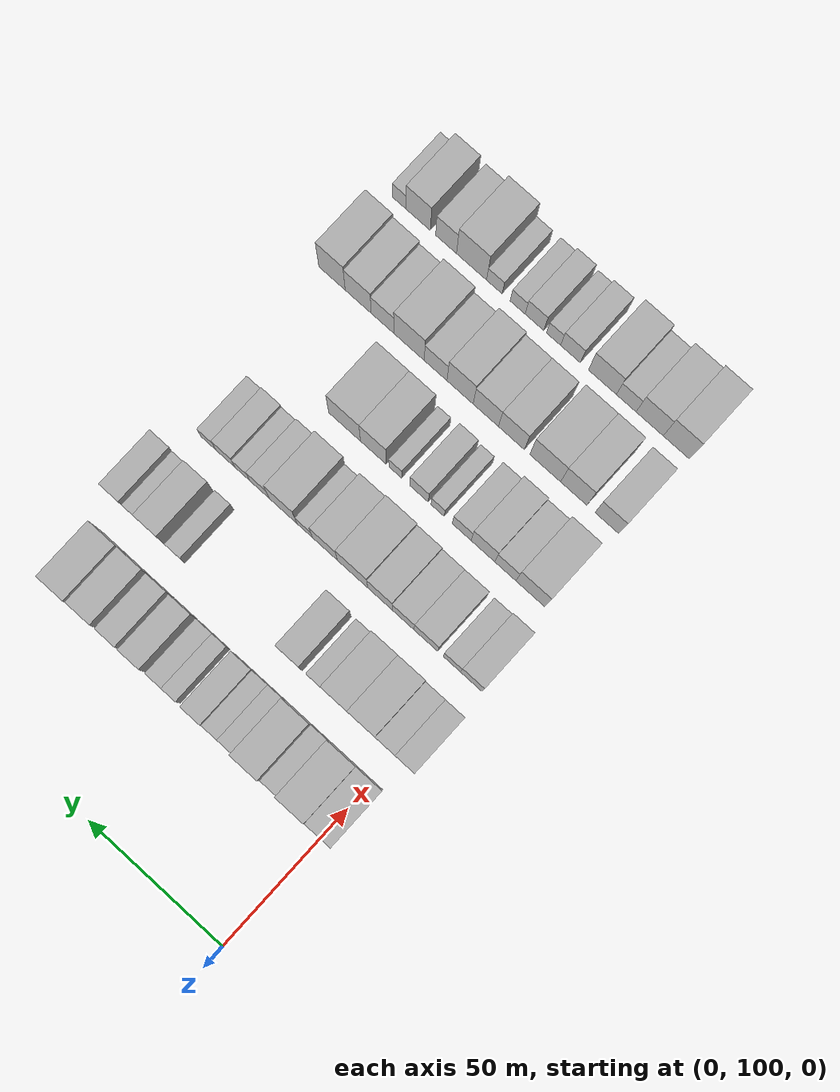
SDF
<sdf version="1.6">
 <world name="default">
  <model name="building_71">
   <static>1</static>
   <pose>50.0000 101.0539 0 0.000000 0.000000 0.000000</pose>
   <link name="link">
    <pose>0 0 10.50 0 0 0</pose>
    <collision name="collision"><geometry><box><size>20.0000 9.3595 21.0000</size></box></geometry></collision>
    <visual name="visual">
     <cast_shadows>0</cast_shadows>
     <geometry><box><size>20.0000 9.3595 21.0000</size></box></geometry>
     <material>
      <script>
       <uri>model://HANNAS_wall/materials/scripts</uri>
       <uri>model://HANNAS_wall/materials/textures</uri>
       <name>vrc/HANNAS_wall</name>
      </script>
     </material>
    </visual>
   </link>
  </model>
  <model name="building_72">
   <static>1</static>
   <pose>50.0000 110.8774 0 0.000000 0.000000 0.000000</pose>
   <link name="link">
    <pose>0 0 12.00 0 0 0</pose>
    <collision name="collision"><geometry><box><size>20.0000 10.2876 24.0000</size></box></geometry></collision>
    <visual name="visual">
     <cast_shadows>0</cast_shadows>
     <geometry><box><size>20.0000 10.2876 24.0000</size></box></geometry>
     <material>
      <script>
       <uri>model://HANNAS_wall/materials/scripts</uri>
       <uri>model://HANNAS_wall/materials/textures</uri>
       <name>vrc/HANNAS_wall</name>
      </script>
     </material>
    </visual>
   </link>
  </model>
  <model name="building_73">
   <static>1</static>
   <pose>50.0000 119.1125 0 0.000000 0.000000 0.000000</pose>
   <link name="link">
    <pose>0 0 7.50 0 0 0</pose>
    <collision name="collision"><geometry><box><size>20.0000 6.1827 15.0000</size></box></geometry></collision>
    <visual name="visual">
     <cast_shadows>0</cast_shadows>
     <geometry><box><size>20.0000 6.1827 15.0000</size></box></geometry>
     <material>
      <script>
       <uri>model://HANNAS_wall/materials/scripts</uri>
       <uri>model://HANNAS_wall/materials/textures</uri>
       <name>vrc/HANNAS_wall</name>
      </script>
     </material>
    </visual>
   </link>
  </model>
  <model name="building_74">
   <static>1</static>
   <pose>50.0000 127.1841 0 0.000000 0.000000 0.000000</pose>
   <link name="link">
    <pose>0 0 12.00 0 0 0</pose>
    <collision name="collision"><geometry><box><size>20.0000 9.9604 24.0000</size></box></geometry></collision>
    <visual name="visual">
     <cast_shadows>0</cast_shadows>
     <geometry><box><size>20.0000 9.9604 24.0000</size></box></geometry>
     <material>
      <script>
       <uri>model://HANNAS_wall/materials/scripts</uri>
       <uri>model://HANNAS_wall/materials/textures</uri>
       <name>vrc/HANNAS_wall</name>
      </script>
     </material>
    </visual>
   </link>
  </model>
  <model name="building_75">
   <static>1</static>
   <pose>50.0000 135.1140 0 0.000000 0.000000 0.000000</pose>
   <link name="link">
    <pose>0 0 6.00 0 0 0</pose>
    <collision name="collision"><geometry><box><size>20.0000 5.8995 12.0000</size></box></geometry></collision>
    <visual name="visual">
     <cast_shadows>0</cast_shadows>
     <geometry><box><size>20.0000 5.8995 12.0000</size></box></geometry>
     <material>
      <script>
       <uri>model://HANNAS_wall/materials/scripts</uri>
       <uri>model://HANNAS_wall/materials/textures</uri>
       <name>vrc/HANNAS_wall</name>
      </script>
     </material>
    </visual>
   </link>
  </model>
  <model name="building_76">
   <static>1</static>
   <pose>50.0000 140.9376 0 0.000000 0.000000 0.000000</pose>
   <link name="link">
    <pose>0 0 6.00 0 0 0</pose>
    <collision name="collision"><geometry><box><size>20.0000 5.7476 12.0000</size></box></geometry></collision>
    <visual name="visual">
     <cast_shadows>0</cast_shadows>
     <geometry><box><size>20.0000 5.7476 12.0000</size></box></geometry>
     <material>
      <script>
       <uri>model://HANNAS_wall/materials/scripts</uri>
       <uri>model://HANNAS_wall/materials/textures</uri>
       <name>vrc/HANNAS_wall</name>
      </script>
     </material>
    </visual>
   </link>
  </model>
  <model name="building_77">
   <static>1</static>
   <pose>50.0000 147.5024 0 0.000000 0.000000 0.000000</pose>
   <link name="link">
    <pose>0 0 7.50 0 0 0</pose>
    <collision name="collision"><geometry><box><size>20.0000 7.3821 15.0000</size></box></geometry></collision>
    <visual name="visual">
     <cast_shadows>0</cast_shadows>
     <geometry><box><size>20.0000 7.3821 15.0000</size></box></geometry>
     <material>
      <script>
       <uri>model://HANNAS_wall/materials/scripts</uri>
       <uri>model://HANNAS_wall/materials/textures</uri>
       <name>vrc/HANNAS_wall</name>
      </script>
     </material>
    </visual>
   </link>
  </model>
  <model name="building_78">
   <static>1</static>
   <pose>50.0000 155.8567 0 0.000000 0.000000 0.000000</pose>
   <link name="link">
    <pose>0 0 6.00 0 0 0</pose>
    <collision name="collision"><geometry><box><size>20.0000 5.3264 12.0000</size></box></geometry></collision>
    <visual name="visual">
     <cast_shadows>0</cast_shadows>
     <geometry><box><size>20.0000 5.3264 12.0000</size></box></geometry>
     <material>
      <script>
       <uri>model://HANNAS_wall/materials/scripts</uri>
       <uri>model://HANNAS_wall/materials/textures</uri>
       <name>vrc/HANNAS_wall</name>
      </script>
     </material>
    </visual>
   </link>
  </model>
  <model name="building_79">
   <static>1</static>
   <pose>50.0000 161.5130 0 0.000000 0.000000 0.000000</pose>
   <link name="link">
    <pose>0 0 6.00 0 0 0</pose>
    <collision name="collision"><geometry><box><size>20.0000 5.9861 12.0000</size></box></geometry></collision>
    <visual name="visual">
     <cast_shadows>0</cast_shadows>
     <geometry><box><size>20.0000 5.9861 12.0000</size></box></geometry>
     <material>
      <script>
       <uri>model://HANNAS_wall/materials/scripts</uri>
       <uri>model://HANNAS_wall/materials/textures</uri>
       <name>vrc/HANNAS_wall</name>
      </script>
     </material>
    </visual>
   </link>
  </model>
  <model name="building_80">
   <static>1</static>
   <pose>50.0000 169.4556 0 0.000000 0.000000 0.000000</pose>
   <link name="link">
    <pose>0 0 9.00 0 0 0</pose>
    <collision name="collision"><geometry><box><size>20.0000 7.8993 18.0000</size></box></geometry></collision>
    <visual name="visual">
     <cast_shadows>0</cast_shadows>
     <geometry><box><size>20.0000 7.8993 18.0000</size></box></geometry>
     <material>
      <script>
       <uri>model://HANNAS_wall/materials/scripts</uri>
       <uri>model://HANNAS_wall/materials/textures</uri>
       <name>vrc/HANNAS_wall</name>
      </script>
     </material>
    </visual>
   </link>
  </model>
  <model name="building_81">
   <static>1</static>
   <pose>50.0000 178.1070 0 0.000000 0.000000 0.000000</pose>
   <link name="link">
    <pose>0 0 9.00 0 0 0</pose>
    <collision name="collision"><geometry><box><size>20.0000 7.4035 18.0000</size></box></geometry></collision>
    <visual name="visual">
     <cast_shadows>0</cast_shadows>
     <geometry><box><size>20.0000 7.4035 18.0000</size></box></geometry>
     <material>
      <script>
       <uri>model://HANNAS_wall/materials/scripts</uri>
       <uri>model://HANNAS_wall/materials/textures</uri>
       <name>vrc/HANNAS_wall</name>
      </script>
     </material>
    </visual>
   </link>
  </model>
  <model name="building_82">
   <static>1</static>
   <pose>50.0000 187.3291 0 0.000000 0.000000 0.000000</pose>
   <link name="link">
    <pose>0 0 10.50 0 0 0</pose>
    <collision name="collision"><geometry><box><size>20.0000 9.0406 21.0000</size></box></geometry></collision>
    <visual name="visual">
     <cast_shadows>0</cast_shadows>
     <geometry><box><size>20.0000 9.0406 21.0000</size></box></geometry>
     <material>
      <script>
       <uri>model://HANNAS_wall/materials/scripts</uri>
       <uri>model://HANNAS_wall/materials/textures</uri>
       <name>vrc/HANNAS_wall</name>
      </script>
     </material>
    </visual>
   </link>
  </model>
  <model name="building_83">
   <static>1</static>
   <pose>50.0000 196.7568 0 0.000000 0.000000 0.000000</pose>
   <link name="link">
    <pose>0 0 12.00 0 0 0</pose>
    <collision name="collision"><geometry><box><size>20.0000 9.8148 24.0000</size></box></geometry></collision>
    <visual name="visual">
     <cast_shadows>0</cast_shadows>
     <geometry><box><size>20.0000 9.8148 24.0000</size></box></geometry>
     <material>
      <script>
       <uri>model://HANNAS_wall/materials/scripts</uri>
       <uri>model://HANNAS_wall/materials/textures</uri>
       <name>vrc/HANNAS_wall</name>
      </script>
     </material>
    </visual>
   </link>
  </model>
  <model name="building_188">
   <static>1</static>
   <pose>79.0000 96.5743 0 0.000000 0.000000 0.000000</pose>
   <link name="link">
    <pose>0 0 7.50 0 0 0</pose>
    <collision name="collision"><geometry><box><size>20.0000 7.0756 15.0000</size></box></geometry></collision>
    <visual name="visual">
     <cast_shadows>0</cast_shadows>
     <geometry><box><size>20.0000 7.0756 15.0000</size></box></geometry>
     <material>
      <script>
       <uri>model://HANNAS_wall/materials/scripts</uri>
       <uri>model://HANNAS_wall/materials/textures</uri>
       <name>vrc/HANNAS_wall</name>
      </script>
     </material>
    </visual>
   </link>
  </model>
  <model name="building_189">
   <static>1</static>
   <pose>79.0000 103.6731 0 0.000000 0.000000 0.000000</pose>
   <link name="link">
    <pose>0 0 7.50 0 0 0</pose>
    <collision name="collision"><geometry><box><size>20.0000 7.1220 15.0000</size></box></geometry></collision>
    <visual name="visual">
     <cast_shadows>0</cast_shadows>
     <geometry><box><size>20.0000 7.1220 15.0000</size></box></geometry>
     <material>
      <script>
       <uri>model://HANNAS_wall/materials/scripts</uri>
       <uri>model://HANNAS_wall/materials/textures</uri>
       <name>vrc/HANNAS_wall</name>
      </script>
     </material>
    </visual>
   </link>
  </model>
  <model name="building_190">
   <static>1</static>
   <pose>79.0000 112.2514 0 0.000000 0.000000 0.000000</pose>
   <link name="link">
    <pose>0 0 10.50 0 0 0</pose>
    <collision name="collision"><geometry><box><size>20.0000 10.0345 21.0000</size></box></geometry></collision>
    <visual name="visual">
     <cast_shadows>0</cast_shadows>
     <geometry><box><size>20.0000 10.0345 21.0000</size></box></geometry>
     <material>
      <script>
       <uri>model://HANNAS_wall/materials/scripts</uri>
       <uri>model://HANNAS_wall/materials/textures</uri>
       <name>vrc/HANNAS_wall</name>
      </script>
     </material>
    </visual>
   </link>
  </model>
  <model name="building_191">
   <static>1</static>
   <pose>79.0000 122.0400 0 0.000000 0.000000 0.000000</pose>
   <link name="link">
    <pose>0 0 10.50 0 0 0</pose>
    <collision name="collision"><geometry><box><size>20.0000 9.5428 21.0000</size></box></geometry></collision>
    <visual name="visual">
     <cast_shadows>0</cast_shadows>
     <geometry><box><size>20.0000 9.5428 21.0000</size></box></geometry>
     <material>
      <script>
       <uri>model://HANNAS_wall/materials/scripts</uri>
       <uri>model://HANNAS_wall/materials/textures</uri>
       <name>vrc/HANNAS_wall</name>
      </script>
     </material>
    </visual>
   </link>
  </model>
  <model name="building_192">
   <static>1</static>
   <pose>79.0000 129.6614 0 0.000000 0.000000 0.000000</pose>
   <link name="link">
    <pose>0 0 6.00 0 0 0</pose>
    <collision name="collision"><geometry><box><size>20.0000 5.7000 12.0000</size></box></geometry></collision>
    <visual name="visual">
     <cast_shadows>0</cast_shadows>
     <geometry><box><size>20.0000 5.7000 12.0000</size></box></geometry>
     <material>
      <script>
       <uri>model://HANNAS_wall/materials/scripts</uri>
       <uri>model://HANNAS_wall/materials/textures</uri>
       <name>vrc/HANNAS_wall</name>
      </script>
     </material>
    </visual>
   </link>
  </model>
  <model name="building_193">
   <static>1</static>
   <pose>79.0000 138.7228 0 0.000000 0.000000 0.000000</pose>
   <link name="link">
    <pose>0 0 10.50 0 0 0</pose>
    <collision name="collision"><geometry><box><size>20.0000 8.4227 21.0000</size></box></geometry></collision>
    <visual name="visual">
     <cast_shadows>0</cast_shadows>
     <geometry><box><size>20.0000 8.4227 21.0000</size></box></geometry>
     <material>
      <script>
       <uri>model://HANNAS_wall/materials/scripts</uri>
       <uri>model://HANNAS_wall/materials/textures</uri>
       <name>vrc/HANNAS_wall</name>
      </script>
     </material>
    </visual>
   </link>
  </model>
  <model name="building_194">
   <static>1</static>
   <pose>79.0000 181.6179 0 0.000000 0.000000 0.000000</pose>
   <link name="link">
    <pose>0 0 6.00 0 0 0</pose>
    <collision name="collision"><geometry><box><size>20.0000 5.7892 12.0000</size></box></geometry></collision>
    <visual name="visual">
     <cast_shadows>0</cast_shadows>
     <geometry><box><size>20.0000 5.7892 12.0000</size></box></geometry>
     <material>
      <script>
       <uri>model://HANNAS_wall/materials/scripts</uri>
       <uri>model://HANNAS_wall/materials/textures</uri>
       <name>vrc/HANNAS_wall</name>
      </script>
     </material>
    </visual>
   </link>
  </model>
  <model name="building_195">
   <static>1</static>
   <pose>79.0000 190.8916 0 0.000000 0.000000 0.000000</pose>
   <link name="link">
    <pose>0 0 9.00 0 0 0</pose>
    <collision name="collision"><geometry><box><size>20.0000 8.7582 18.0000</size></box></geometry></collision>
    <visual name="visual">
     <cast_shadows>0</cast_shadows>
     <geometry><box><size>20.0000 8.7582 18.0000</size></box></geometry>
     <material>
      <script>
       <uri>model://HANNAS_wall/materials/scripts</uri>
       <uri>model://HANNAS_wall/materials/textures</uri>
       <name>vrc/HANNAS_wall</name>
      </script>
     </material>
    </visual>
   </link>
  </model>
  <model name="building_196">
   <static>1</static>
   <pose>79.0000 197.8643 0 0.000000 0.000000 0.000000</pose>
   <link name="link">
    <pose>0 0 6.00 0 0 0</pose>
    <collision name="collision"><geometry><box><size>20.0000 5.1871 12.0000</size></box></geometry></collision>
    <visual name="visual">
     <cast_shadows>0</cast_shadows>
     <geometry><box><size>20.0000 5.1871 12.0000</size></box></geometry>
     <material>
      <script>
       <uri>model://HANNAS_wall/materials/scripts</uri>
       <uri>model://HANNAS_wall/materials/textures</uri>
       <name>vrc/HANNAS_wall</name>
      </script>
     </material>
    </visual>
   </link>
  </model>
  <model name="building_197">
   <static>1</static>
   <pose>79.0000 204.0607 0 0.000000 0.000000 0.000000</pose>
   <link name="link">
    <pose>0 0 9.00 0 0 0</pose>
    <collision name="collision"><geometry><box><size>20.0000 7.2057 18.0000</size></box></geometry></collision>
    <visual name="visual">
     <cast_shadows>0</cast_shadows>
     <geometry><box><size>20.0000 7.2057 18.0000</size></box></geometry>
     <material>
      <script>
       <uri>model://HANNAS_wall/materials/scripts</uri>
       <uri>model://HANNAS_wall/materials/textures</uri>
       <name>vrc/HANNAS_wall</name>
      </script>
     </material>
    </visual>
   </link>
  </model>
  <model name="building_302">
   <static>1</static>
   <pose>108.0000 98.2556 0 0.000000 0.000000 0.000000</pose>
   <link name="link">
    <pose>0 0 9.00 0 0 0</pose>
    <collision name="collision"><geometry><box><size>20.0000 7.8752 18.0000</size></box></geometry></collision>
    <visual name="visual">
     <cast_shadows>0</cast_shadows>
     <geometry><box><size>20.0000 7.8752 18.0000</size></box></geometry>
     <material>
      <script>
       <uri>model://HANNAS_wall/materials/scripts</uri>
       <uri>model://HANNAS_wall/materials/textures</uri>
       <name>vrc/HANNAS_wall</name>
      </script>
     </material>
    </visual>
   </link>
  </model>
  <model name="building_303">
   <static>1</static>
   <pose>108.0000 105.4033 0 0.000000 0.000000 0.000000</pose>
   <link name="link">
    <pose>0 0 7.50 0 0 0</pose>
    <collision name="collision"><geometry><box><size>20.0000 6.4203 15.0000</size></box></geometry></collision>
    <visual name="visual">
     <cast_shadows>0</cast_shadows>
     <geometry><box><size>20.0000 6.4203 15.0000</size></box></geometry>
     <material>
      <script>
       <uri>model://HANNAS_wall/materials/scripts</uri>
       <uri>model://HANNAS_wall/materials/textures</uri>
       <name>vrc/HANNAS_wall</name>
      </script>
     </material>
    </visual>
   </link>
  </model>
  <model name="building_304">
   <static>1</static>
   <pose>108.0000 115.0319 0 0.000000 0.000000 0.000000</pose>
   <link name="link">
    <pose>0 0 9.00 0 0 0</pose>
    <collision name="collision"><geometry><box><size>20.0000 8.8369 18.0000</size></box></geometry></collision>
    <visual name="visual">
     <cast_shadows>0</cast_shadows>
     <geometry><box><size>20.0000 8.8369 18.0000</size></box></geometry>
     <material>
      <script>
       <uri>model://HANNAS_wall/materials/scripts</uri>
       <uri>model://HANNAS_wall/materials/textures</uri>
       <name>vrc/HANNAS_wall</name>
      </script>
     </material>
    </visual>
   </link>
  </model>
  <model name="building_305">
   <static>1</static>
   <pose>108.0000 123.5034 0 0.000000 0.000000 0.000000</pose>
   <link name="link">
    <pose>0 0 9.00 0 0 0</pose>
    <collision name="collision"><geometry><box><size>20.0000 8.1060 18.0000</size></box></geometry></collision>
    <visual name="visual">
     <cast_shadows>0</cast_shadows>
     <geometry><box><size>20.0000 8.1060 18.0000</size></box></geometry>
     <material>
      <script>
       <uri>model://HANNAS_wall/materials/scripts</uri>
       <uri>model://HANNAS_wall/materials/textures</uri>
       <name>vrc/HANNAS_wall</name>
      </script>
     </material>
    </visual>
   </link>
  </model>
  <model name="building_306">
   <static>1</static>
   <pose>108.0000 132.1060 0 0.000000 0.000000 0.000000</pose>
   <link name="link">
    <pose>0 0 10.50 0 0 0</pose>
    <collision name="collision"><geometry><box><size>20.0000 9.0993 21.0000</size></box></geometry></collision>
    <visual name="visual">
     <cast_shadows>0</cast_shadows>
     <geometry><box><size>20.0000 9.0993 21.0000</size></box></geometry>
     <material>
      <script>
       <uri>model://HANNAS_wall/materials/scripts</uri>
       <uri>model://HANNAS_wall/materials/textures</uri>
       <name>vrc/HANNAS_wall</name>
      </script>
     </material>
    </visual>
   </link>
  </model>
  <model name="building_307">
   <static>1</static>
   <pose>108.0000 142.3118 0 0.000000 0.000000 0.000000</pose>
   <link name="link">
    <pose>0 0 12.00 0 0 0</pose>
    <collision name="collision"><geometry><box><size>20.0000 11.3123 24.0000</size></box></geometry></collision>
    <visual name="visual">
     <cast_shadows>0</cast_shadows>
     <geometry><box><size>20.0000 11.3123 24.0000</size></box></geometry>
     <material>
      <script>
       <uri>model://HANNAS_wall/materials/scripts</uri>
       <uri>model://HANNAS_wall/materials/textures</uri>
       <name>vrc/HANNAS_wall</name>
      </script>
     </material>
    </visual>
   </link>
  </model>
  <model name="building_308">
   <static>1</static>
   <pose>108.0000 152.6984 0 0.000000 0.000000 0.000000</pose>
   <link name="link">
    <pose>0 0 10.50 0 0 0</pose>
    <collision name="collision"><geometry><box><size>20.0000 9.4609 21.0000</size></box></geometry></collision>
    <visual name="visual">
     <cast_shadows>0</cast_shadows>
     <geometry><box><size>20.0000 9.4609 21.0000</size></box></geometry>
     <material>
      <script>
       <uri>model://HANNAS_wall/materials/scripts</uri>
       <uri>model://HANNAS_wall/materials/textures</uri>
       <name>vrc/HANNAS_wall</name>
      </script>
     </material>
    </visual>
   </link>
  </model>
  <model name="building_309">
   <static>1</static>
   <pose>108.0000 160.3365 0 0.000000 0.000000 0.000000</pose>
   <link name="link">
    <pose>0 0 6.00 0 0 0</pose>
    <collision name="collision"><geometry><box><size>20.0000 5.8154 12.0000</size></box></geometry></collision>
    <visual name="visual">
     <cast_shadows>0</cast_shadows>
     <geometry><box><size>20.0000 5.8154 12.0000</size></box></geometry>
     <material>
      <script>
       <uri>model://HANNAS_wall/materials/scripts</uri>
       <uri>model://HANNAS_wall/materials/textures</uri>
       <name>vrc/HANNAS_wall</name>
      </script>
     </material>
    </visual>
   </link>
  </model>
  <model name="building_310">
   <static>1</static>
   <pose>108.0000 168.4570 0 0.000000 0.000000 0.000000</pose>
   <link name="link">
    <pose>0 0 12.00 0 0 0</pose>
    <collision name="collision"><geometry><box><size>20.0000 10.4254 24.0000</size></box></geometry></collision>
    <visual name="visual">
     <cast_shadows>0</cast_shadows>
     <geometry><box><size>20.0000 10.4254 24.0000</size></box></geometry>
     <material>
      <script>
       <uri>model://HANNAS_wall/materials/scripts</uri>
       <uri>model://HANNAS_wall/materials/textures</uri>
       <name>vrc/HANNAS_wall</name>
      </script>
     </material>
    </visual>
   </link>
  </model>
  <model name="building_311">
   <static>1</static>
   <pose>108.0000 177.3635 0 0.000000 0.000000 0.000000</pose>
   <link name="link">
    <pose>0 0 7.50 0 0 0</pose>
    <collision name="collision"><geometry><box><size>20.0000 7.3877 15.0000</size></box></geometry></collision>
    <visual name="visual">
     <cast_shadows>0</cast_shadows>
     <geometry><box><size>20.0000 7.3877 15.0000</size></box></geometry>
     <material>
      <script>
       <uri>model://HANNAS_wall/materials/scripts</uri>
       <uri>model://HANNAS_wall/materials/textures</uri>
       <name>vrc/HANNAS_wall</name>
      </script>
     </material>
    </visual>
   </link>
  </model>
  <model name="building_312">
   <static>1</static>
   <pose>108.0000 183.8747 0 0.000000 0.000000 0.000000</pose>
   <link name="link">
    <pose>0 0 6.00 0 0 0</pose>
    <collision name="collision"><geometry><box><size>20.0000 5.6348 12.0000</size></box></geometry></collision>
    <visual name="visual">
     <cast_shadows>0</cast_shadows>
     <geometry><box><size>20.0000 5.6348 12.0000</size></box></geometry>
     <material>
      <script>
       <uri>model://HANNAS_wall/materials/scripts</uri>
       <uri>model://HANNAS_wall/materials/textures</uri>
       <name>vrc/HANNAS_wall</name>
      </script>
     </material>
    </visual>
   </link>
  </model>
  <model name="building_313">
   <static>1</static>
   <pose>108.0000 190.2907 0 0.000000 0.000000 0.000000</pose>
   <link name="link">
    <pose>0 0 7.50 0 0 0</pose>
    <collision name="collision"><geometry><box><size>20.0000 7.1971 15.0000</size></box></geometry></collision>
    <visual name="visual">
     <cast_shadows>0</cast_shadows>
     <geometry><box><size>20.0000 7.1971 15.0000</size></box></geometry>
     <material>
      <script>
       <uri>model://HANNAS_wall/materials/scripts</uri>
       <uri>model://HANNAS_wall/materials/textures</uri>
       <name>vrc/HANNAS_wall</name>
      </script>
     </material>
    </visual>
   </link>
  </model>
  <model name="building_314">
   <static>1</static>
   <pose>108.0000 196.7544 0 0.000000 0.000000 0.000000</pose>
   <link name="link">
    <pose>0 0 6.00 0 0 0</pose>
    <collision name="collision"><geometry><box><size>20.0000 5.7305 12.0000</size></box></geometry></collision>
    <visual name="visual">
     <cast_shadows>0</cast_shadows>
     <geometry><box><size>20.0000 5.7305 12.0000</size></box></geometry>
     <material>
      <script>
       <uri>model://HANNAS_wall/materials/scripts</uri>
       <uri>model://HANNAS_wall/materials/textures</uri>
       <name>vrc/HANNAS_wall</name>
      </script>
     </material>
    </visual>
   </link>
  </model>
  <model name="building_408">
   <static>1</static>
   <pose>137.0000 102.3464 0 0.000000 0.000000 0.000000</pose>
   <link name="link">
    <pose>0 0 12.00 0 0 0</pose>
    <collision name="collision"><geometry><box><size>20.0000 10.6785 24.0000</size></box></geometry></collision>
    <visual name="visual">
     <cast_shadows>0</cast_shadows>
     <geometry><box><size>20.0000 10.6785 24.0000</size></box></geometry>
     <material>
      <script>
       <uri>model://HANNAS_wall/materials/scripts</uri>
       <uri>model://HANNAS_wall/materials/textures</uri>
       <name>vrc/HANNAS_wall</name>
      </script>
     </material>
    </visual>
   </link>
  </model>
  <model name="building_409">
   <static>1</static>
   <pose>137.0000 111.6262 0 0.000000 0.000000 0.000000</pose>
   <link name="link">
    <pose>0 0 9.00 0 0 0</pose>
    <collision name="collision"><geometry><box><size>20.0000 7.8810 18.0000</size></box></geometry></collision>
    <visual name="visual">
     <cast_shadows>0</cast_shadows>
     <geometry><box><size>20.0000 7.8810 18.0000</size></box></geometry>
     <material>
      <script>
       <uri>model://HANNAS_wall/materials/scripts</uri>
       <uri>model://HANNAS_wall/materials/textures</uri>
       <name>vrc/HANNAS_wall</name>
      </script>
     </material>
    </visual>
   </link>
  </model>
  <model name="building_410">
   <static>1</static>
   <pose>137.0000 119.9824 0 0.000000 0.000000 0.000000</pose>
   <link name="link">
    <pose>0 0 10.50 0 0 0</pose>
    <collision name="collision"><geometry><box><size>20.0000 8.8315 21.0000</size></box></geometry></collision>
    <visual name="visual">
     <cast_shadows>0</cast_shadows>
     <geometry><box><size>20.0000 8.8315 21.0000</size></box></geometry>
     <material>
      <script>
       <uri>model://HANNAS_wall/materials/scripts</uri>
       <uri>model://HANNAS_wall/materials/textures</uri>
       <name>vrc/HANNAS_wall</name>
      </script>
     </material>
    </visual>
   </link>
  </model>
  <model name="building_411">
   <static>1</static>
   <pose>137.0000 127.9143 0 0.000000 0.000000 0.000000</pose>
   <link name="link">
    <pose>0 0 7.50 0 0 0</pose>
    <collision name="collision"><geometry><box><size>20.0000 7.0322 15.0000</size></box></geometry></collision>
    <visual name="visual">
     <cast_shadows>0</cast_shadows>
     <geometry><box><size>20.0000 7.0322 15.0000</size></box></geometry>
     <material>
      <script>
       <uri>model://HANNAS_wall/materials/scripts</uri>
       <uri>model://HANNAS_wall/materials/textures</uri>
       <name>vrc/HANNAS_wall</name>
      </script>
     </material>
    </visual>
   </link>
  </model>
  <model name="building_412">
   <static>1</static>
   <pose>137.0000 136.9171 0 0.000000 0.000000 0.000000</pose>
   <link name="link">
    <pose>0 0 6.00 0 0 0</pose>
    <collision name="collision"><geometry><box><size>20.0000 4.9735 12.0000</size></box></geometry></collision>
    <visual name="visual">
     <cast_shadows>0</cast_shadows>
     <geometry><box><size>20.0000 4.9735 12.0000</size></box></geometry>
     <material>
      <script>
       <uri>model://HANNAS_wall/materials/scripts</uri>
       <uri>model://HANNAS_wall/materials/textures</uri>
       <name>vrc/HANNAS_wall</name>
      </script>
     </material>
    </visual>
   </link>
  </model>
  <model name="building_413">
   <static>1</static>
   <pose>137.0000 143.8918 0 0.000000 0.000000 0.000000</pose>
   <link name="link">
    <pose>0 0 7.50 0 0 0</pose>
    <collision name="collision"><geometry><box><size>20.0000 6.9758 15.0000</size></box></geometry></collision>
    <visual name="visual">
     <cast_shadows>0</cast_shadows>
     <geometry><box><size>20.0000 6.9758 15.0000</size></box></geometry>
     <material>
      <script>
       <uri>model://HANNAS_wall/materials/scripts</uri>
       <uri>model://HANNAS_wall/materials/textures</uri>
       <name>vrc/HANNAS_wall</name>
      </script>
     </material>
    </visual>
   </link>
  </model>
  <model name="building_414">
   <static>1</static>
   <pose>137.0000 152.7849 0 0.000000 0.000000 0.000000</pose>
   <link name="link">
    <pose>0 0 6.00 0 0 0</pose>
    <collision name="collision"><geometry><box><size>20.0000 4.8103 12.0000</size></box></geometry></collision>
    <visual name="visual">
     <cast_shadows>0</cast_shadows>
     <geometry><box><size>20.0000 4.8103 12.0000</size></box></geometry>
     <material>
      <script>
       <uri>model://HANNAS_wall/materials/scripts</uri>
       <uri>model://HANNAS_wall/materials/textures</uri>
       <name>vrc/HANNAS_wall</name>
      </script>
     </material>
    </visual>
   </link>
  </model>
  <model name="building_415">
   <static>1</static>
   <pose>137.0000 161.0435 0 0.000000 0.000000 0.000000</pose>
   <link name="link">
    <pose>0 0 12.00 0 0 0</pose>
    <collision name="collision"><geometry><box><size>20.0000 9.7071 24.0000</size></box></geometry></collision>
    <visual name="visual">
     <cast_shadows>0</cast_shadows>
     <geometry><box><size>20.0000 9.7071 24.0000</size></box></geometry>
     <material>
      <script>
       <uri>model://HANNAS_wall/materials/scripts</uri>
       <uri>model://HANNAS_wall/materials/textures</uri>
       <name>vrc/HANNAS_wall</name>
      </script>
     </material>
    </visual>
   </link>
  </model>
  <model name="building_416">
   <static>1</static>
   <pose>137.0000 171.8922 0 0.000000 0.000000 0.000000</pose>
   <link name="link">
    <pose>0 0 12.00 0 0 0</pose>
    <collision name="collision"><geometry><box><size>20.0000 11.9903 24.0000</size></box></geometry></collision>
    <visual name="visual">
     <cast_shadows>0</cast_shadows>
     <geometry><box><size>20.0000 11.9903 24.0000</size></box></geometry>
     <material>
      <script>
       <uri>model://HANNAS_wall/materials/scripts</uri>
       <uri>model://HANNAS_wall/materials/textures</uri>
       <name>vrc/HANNAS_wall</name>
      </script>
     </material>
    </visual>
   </link>
  </model>
  <model name="building_522">
   <static>1</static>
   <pose>166.0000 99.7844 0 0.000000 0.000000 0.000000</pose>
   <link name="link">
    <pose>0 0 10.50 0 0 0</pose>
    <collision name="collision"><geometry><box><size>20.0000 8.7905 21.0000</size></box></geometry></collision>
    <visual name="visual">
     <cast_shadows>0</cast_shadows>
     <geometry><box><size>20.0000 8.7905 21.0000</size></box></geometry>
     <material>
      <script>
       <uri>model://HANNAS_wall/materials/scripts</uri>
       <uri>model://HANNAS_wall/materials/textures</uri>
       <name>vrc/HANNAS_wall</name>
      </script>
     </material>
    </visual>
   </link>
  </model>
  <model name="building_523">
   <static>1</static>
   <pose>166.0000 112.0609 0 0.000000 0.000000 0.000000</pose>
   <link name="link">
    <pose>0 0 12.00 0 0 0</pose>
    <collision name="collision"><geometry><box><size>20.0000 9.7625 24.0000</size></box></geometry></collision>
    <visual name="visual">
     <cast_shadows>0</cast_shadows>
     <geometry><box><size>20.0000 9.7625 24.0000</size></box></geometry>
     <material>
      <script>
       <uri>model://HANNAS_wall/materials/scripts</uri>
       <uri>model://HANNAS_wall/materials/textures</uri>
       <name>vrc/HANNAS_wall</name>
      </script>
     </material>
    </visual>
   </link>
  </model>
  <model name="building_524">
   <static>1</static>
   <pose>166.0000 122.7103 0 0.000000 0.000000 0.000000</pose>
   <link name="link">
    <pose>0 0 12.00 0 0 0</pose>
    <collision name="collision"><geometry><box><size>20.0000 11.5364 24.0000</size></box></geometry></collision>
    <visual name="visual">
     <cast_shadows>0</cast_shadows>
     <geometry><box><size>20.0000 11.5364 24.0000</size></box></geometry>
     <material>
      <script>
       <uri>model://HANNAS_wall/materials/scripts</uri>
       <uri>model://HANNAS_wall/materials/textures</uri>
       <name>vrc/HANNAS_wall</name>
      </script>
     </material>
    </visual>
   </link>
  </model>
  <model name="building_525">
   <static>1</static>
   <pose>166.0000 135.3491 0 0.000000 0.000000 0.000000</pose>
   <link name="link">
    <pose>0 0 10.50 0 0 0</pose>
    <collision name="collision"><geometry><box><size>20.0000 9.7411 21.0000</size></box></geometry></collision>
    <visual name="visual">
     <cast_shadows>0</cast_shadows>
     <geometry><box><size>20.0000 9.7411 21.0000</size></box></geometry>
     <material>
      <script>
       <uri>model://HANNAS_wall/materials/scripts</uri>
       <uri>model://HANNAS_wall/materials/textures</uri>
       <name>vrc/HANNAS_wall</name>
      </script>
     </material>
    </visual>
   </link>
  </model>
  <model name="building_526">
   <static>1</static>
   <pose>166.0000 144.9802 0 0.000000 0.000000 0.000000</pose>
   <link name="link">
    <pose>0 0 10.50 0 0 0</pose>
    <collision name="collision"><geometry><box><size>20.0000 9.5213 21.0000</size></box></geometry></collision>
    <visual name="visual">
     <cast_shadows>0</cast_shadows>
     <geometry><box><size>20.0000 9.5213 21.0000</size></box></geometry>
     <material>
      <script>
       <uri>model://HANNAS_wall/materials/scripts</uri>
       <uri>model://HANNAS_wall/materials/textures</uri>
       <name>vrc/HANNAS_wall</name>
      </script>
     </material>
    </visual>
   </link>
  </model>
  <model name="building_527">
   <static>1</static>
   <pose>166.0000 154.6843 0 0.000000 0.000000 0.000000</pose>
   <link name="link">
    <pose>0 0 12.00 0 0 0</pose>
    <collision name="collision"><geometry><box><size>20.0000 9.8869 24.0000</size></box></geometry></collision>
    <visual name="visual">
     <cast_shadows>0</cast_shadows>
     <geometry><box><size>20.0000 9.8869 24.0000</size></box></geometry>
     <material>
      <script>
       <uri>model://HANNAS_wall/materials/scripts</uri>
       <uri>model://HANNAS_wall/materials/textures</uri>
       <name>vrc/HANNAS_wall</name>
      </script>
     </material>
    </visual>
   </link>
  </model>
  <model name="building_528">
   <static>1</static>
   <pose>166.0000 163.9347 0 0.000000 0.000000 0.000000</pose>
   <link name="link">
    <pose>0 0 9.00 0 0 0</pose>
    <collision name="collision"><geometry><box><size>20.0000 8.6139 18.0000</size></box></geometry></collision>
    <visual name="visual">
     <cast_shadows>0</cast_shadows>
     <geometry><box><size>20.0000 8.6139 18.0000</size></box></geometry>
     <material>
      <script>
       <uri>model://HANNAS_wall/materials/scripts</uri>
       <uri>model://HANNAS_wall/materials/textures</uri>
       <name>vrc/HANNAS_wall</name>
      </script>
     </material>
    </visual>
   </link>
  </model>
  <model name="building_529">
   <static>1</static>
   <pose>166.0000 174.0093 0 0.000000 0.000000 0.000000</pose>
   <link name="link">
    <pose>0 0 12.00 0 0 0</pose>
    <collision name="collision"><geometry><box><size>20.0000 11.5352 24.0000</size></box></geometry></collision>
    <visual name="visual">
     <cast_shadows>0</cast_shadows>
     <geometry><box><size>20.0000 11.5352 24.0000</size></box></geometry>
     <material>
      <script>
       <uri>model://HANNAS_wall/materials/scripts</uri>
       <uri>model://HANNAS_wall/materials/textures</uri>
       <name>vrc/HANNAS_wall</name>
      </script>
     </material>
    </visual>
   </link>
  </model>
  <model name="building_530">
   <static>1</static>
   <pose>166.0000 184.0669 0 0.000000 0.000000 0.000000</pose>
   <link name="link">
    <pose>0 0 9.00 0 0 0</pose>
    <collision name="collision"><geometry><box><size>20.0000 8.5799 18.0000</size></box></geometry></collision>
    <visual name="visual">
     <cast_shadows>0</cast_shadows>
     <geometry><box><size>20.0000 8.5799 18.0000</size></box></geometry>
     <material>
      <script>
       <uri>model://HANNAS_wall/materials/scripts</uri>
       <uri>model://HANNAS_wall/materials/textures</uri>
       <name>vrc/HANNAS_wall</name>
      </script>
     </material>
    </visual>
   </link>
  </model>
  <model name="building_531">
   <static>1</static>
   <pose>166.0000 193.3069 0 0.000000 0.000000 0.000000</pose>
   <link name="link">
    <pose>0 0 10.50 0 0 0</pose>
    <collision name="collision"><geometry><box><size>20.0000 9.9001 21.0000</size></box></geometry></collision>
    <visual name="visual">
     <cast_shadows>0</cast_shadows>
     <geometry><box><size>20.0000 9.9001 21.0000</size></box></geometry>
     <material>
      <script>
       <uri>model://HANNAS_wall/materials/scripts</uri>
       <uri>model://HANNAS_wall/materials/textures</uri>
       <name>vrc/HANNAS_wall</name>
      </script>
     </material>
    </visual>
   </link>
  </model>
  <model name="building_532">
   <static>1</static>
   <pose>166.0000 203.3039 0 0.000000 0.000000 0.000000</pose>
   <link name="link">
    <pose>0 0 12.00 0 0 0</pose>
    <collision name="collision"><geometry><box><size>20.0000 10.0939 24.0000</size></box></geometry></collision>
    <visual name="visual">
     <cast_shadows>0</cast_shadows>
     <geometry><box><size>20.0000 10.0939 24.0000</size></box></geometry>
     <material>
      <script>
       <uri>model://HANNAS_wall/materials/scripts</uri>
       <uri>model://HANNAS_wall/materials/textures</uri>
       <name>vrc/HANNAS_wall</name>
      </script>
     </material>
    </visual>
   </link>
  </model>
  <model name="building_637">
   <static>1</static>
   <pose>195.0000 99.5560 0 0.000000 0.000000 0.000000</pose>
   <link name="link">
    <pose>0 0 12.00 0 0 0</pose>
    <collision name="collision"><geometry><box><size>20.0000 9.6841 24.0000</size></box></geometry></collision>
    <visual name="visual">
     <cast_shadows>0</cast_shadows>
     <geometry><box><size>20.0000 9.6841 24.0000</size></box></geometry>
     <material>
      <script>
       <uri>model://HANNAS_wall/materials/scripts</uri>
       <uri>model://HANNAS_wall/materials/textures</uri>
       <name>vrc/HANNAS_wall</name>
      </script>
     </material>
    </visual>
   </link>
  </model>
  <model name="building_638">
   <static>1</static>
   <pose>195.0000 109.4462 0 0.000000 0.000000 0.000000</pose>
   <link name="link">
    <pose>0 0 10.50 0 0 0</pose>
    <collision name="collision"><geometry><box><size>20.0000 10.0964 21.0000</size></box></geometry></collision>
    <visual name="visual">
     <cast_shadows>0</cast_shadows>
     <geometry><box><size>20.0000 10.0964 21.0000</size></box></geometry>
     <material>
      <script>
       <uri>model://HANNAS_wall/materials/scripts</uri>
       <uri>model://HANNAS_wall/materials/textures</uri>
       <name>vrc/HANNAS_wall</name>
      </script>
     </material>
    </visual>
   </link>
  </model>
  <model name="building_639">
   <static>1</static>
   <pose>195.0000 118.1787 0 0.000000 0.000000 0.000000</pose>
   <link name="link">
    <pose>0 0 7.50 0 0 0</pose>
    <collision name="collision"><geometry><box><size>20.0000 7.3685 15.0000</size></box></geometry></collision>
    <visual name="visual">
     <cast_shadows>0</cast_shadows>
     <geometry><box><size>20.0000 7.3685 15.0000</size></box></geometry>
     <material>
      <script>
       <uri>model://HANNAS_wall/materials/scripts</uri>
       <uri>model://HANNAS_wall/materials/textures</uri>
       <name>vrc/HANNAS_wall</name>
      </script>
     </material>
    </visual>
   </link>
  </model>
  <model name="building_640">
   <static>1</static>
   <pose>195.0000 127.1120 0 0.000000 0.000000 0.000000</pose>
   <link name="link">
    <pose>0 0 10.50 0 0 0</pose>
    <collision name="collision"><geometry><box><size>20.0000 10.4981 21.0000</size></box></geometry></collision>
    <visual name="visual">
     <cast_shadows>0</cast_shadows>
     <geometry><box><size>20.0000 10.4981 21.0000</size></box></geometry>
     <material>
      <script>
       <uri>model://HANNAS_wall/materials/scripts</uri>
       <uri>model://HANNAS_wall/materials/textures</uri>
       <name>vrc/HANNAS_wall</name>
      </script>
     </material>
    </visual>
   </link>
  </model>
  <model name="building_641">
   <static>1</static>
   <pose>195.0000 139.0691 0 0.000000 0.000000 0.000000</pose>
   <link name="link">
    <pose>0 0 7.50 0 0 0</pose>
    <collision name="collision"><geometry><box><size>20.0000 7.4162 15.0000</size></box></geometry></collision>
    <visual name="visual">
     <cast_shadows>0</cast_shadows>
     <geometry><box><size>20.0000 7.4162 15.0000</size></box></geometry>
     <material>
      <script>
       <uri>model://HANNAS_wall/materials/scripts</uri>
       <uri>model://HANNAS_wall/materials/textures</uri>
       <name>vrc/HANNAS_wall</name>
      </script>
     </material>
    </visual>
   </link>
  </model>
  <model name="building_642">
   <static>1</static>
   <pose>195.0000 145.4331 0 0.000000 0.000000 0.000000</pose>
   <link name="link">
    <pose>0 0 6.00 0 0 0</pose>
    <collision name="collision"><geometry><box><size>20.0000 5.3119 12.0000</size></box></geometry></collision>
    <visual name="visual">
     <cast_shadows>0</cast_shadows>
     <geometry><box><size>20.0000 5.3119 12.0000</size></box></geometry>
     <material>
      <script>
       <uri>model://HANNAS_wall/materials/scripts</uri>
       <uri>model://HANNAS_wall/materials/textures</uri>
       <name>vrc/HANNAS_wall</name>
      </script>
     </material>
    </visual>
   </link>
  </model>
  <model name="building_643">
   <static>1</static>
   <pose>195.0000 152.6151 0 0.000000 0.000000 0.000000</pose>
   <link name="link">
    <pose>0 0 7.50 0 0 0</pose>
    <collision name="collision"><geometry><box><size>20.0000 7.0520 15.0000</size></box></geometry></collision>
    <visual name="visual">
     <cast_shadows>0</cast_shadows>
     <geometry><box><size>20.0000 7.0520 15.0000</size></box></geometry>
     <material>
      <script>
       <uri>model://HANNAS_wall/materials/scripts</uri>
       <uri>model://HANNAS_wall/materials/textures</uri>
       <name>vrc/HANNAS_wall</name>
      </script>
     </material>
    </visual>
   </link>
  </model>
  <model name="building_644">
   <static>1</static>
   <pose>195.0000 158.9865 0 0.000000 0.000000 0.000000</pose>
   <link name="link">
    <pose>0 0 6.00 0 0 0</pose>
    <collision name="collision"><geometry><box><size>20.0000 5.6909 12.0000</size></box></geometry></collision>
    <visual name="visual">
     <cast_shadows>0</cast_shadows>
     <geometry><box><size>20.0000 5.6909 12.0000</size></box></geometry>
     <material>
      <script>
       <uri>model://HANNAS_wall/materials/scripts</uri>
       <uri>model://HANNAS_wall/materials/textures</uri>
       <name>vrc/HANNAS_wall</name>
      </script>
     </material>
    </visual>
   </link>
  </model>
  <model name="building_645">
   <static>1</static>
   <pose>195.0000 167.8050 0 0.000000 0.000000 0.000000</pose>
   <link name="link">
    <pose>0 0 6.00 0 0 0</pose>
    <collision name="collision"><geometry><box><size>20.0000 5.9461 12.0000</size></box></geometry></collision>
    <visual name="visual">
     <cast_shadows>0</cast_shadows>
     <geometry><box><size>20.0000 5.9461 12.0000</size></box></geometry>
     <material>
      <script>
       <uri>model://HANNAS_wall/materials/scripts</uri>
       <uri>model://HANNAS_wall/materials/textures</uri>
       <name>vrc/HANNAS_wall</name>
      </script>
     </material>
    </visual>
   </link>
  </model>
  <model name="building_646">
   <static>1</static>
   <pose>195.0000 176.4786 0 0.000000 0.000000 0.000000</pose>
   <link name="link">
    <pose>0 0 12.00 0 0 0</pose>
    <collision name="collision"><geometry><box><size>20.0000 11.4010 24.0000</size></box></geometry></collision>
    <visual name="visual">
     <cast_shadows>0</cast_shadows>
     <geometry><box><size>20.0000 11.4010 24.0000</size></box></geometry>
     <material>
      <script>
       <uri>model://HANNAS_wall/materials/scripts</uri>
       <uri>model://HANNAS_wall/materials/textures</uri>
       <name>vrc/HANNAS_wall</name>
      </script>
     </material>
    </visual>
   </link>
  </model>
  <model name="building_647">
   <static>1</static>
   <pose>195.0000 186.1608 0 0.000000 0.000000 0.000000</pose>
   <link name="link">
    <pose>0 0 9.00 0 0 0</pose>
    <collision name="collision"><geometry><box><size>20.0000 7.9633 18.0000</size></box></geometry></collision>
    <visual name="visual">
     <cast_shadows>0</cast_shadows>
     <geometry><box><size>20.0000 7.9633 18.0000</size></box></geometry>
     <material>
      <script>
       <uri>model://HANNAS_wall/materials/scripts</uri>
       <uri>model://HANNAS_wall/materials/textures</uri>
       <name>vrc/HANNAS_wall</name>
      </script>
     </material>
    </visual>
   </link>
  </model>
  <model name="building_648">
   <static>1</static>
   <pose>195.0000 196.8539 0 0.000000 0.000000 0.000000</pose>
   <link name="link">
    <pose>0 0 10.50 0 0 0</pose>
    <collision name="collision"><geometry><box><size>20.0000 9.4230 21.0000</size></box></geometry></collision>
    <visual name="visual">
     <cast_shadows>0</cast_shadows>
     <geometry><box><size>20.0000 9.4230 21.0000</size></box></geometry>
     <material>
      <script>
       <uri>model://HANNAS_wall/materials/scripts</uri>
       <uri>model://HANNAS_wall/materials/textures</uri>
       <name>vrc/HANNAS_wall</name>
      </script>
     </material>
    </visual>
   </link>
  </model>
  <model name="building_649">
   <static>1</static>
   <pose>195.0000 204.1491 0 0.000000 0.000000 0.000000</pose>
   <link name="link">
    <pose>0 0 6.00 0 0 0</pose>
    <collision name="collision"><geometry><box><size>20.0000 5.1674 12.0000</size></box></geometry></collision>
    <visual name="visual">
     <cast_shadows>0</cast_shadows>
     <geometry><box><size>20.0000 5.1674 12.0000</size></box></geometry>
     <material>
      <script>
       <uri>model://HANNAS_wall/materials/scripts</uri>
       <uri>model://HANNAS_wall/materials/textures</uri>
       <name>vrc/HANNAS_wall</name>
      </script>
     </material>
    </visual>
   </link>
  </model>
 </world>
</sdf>
